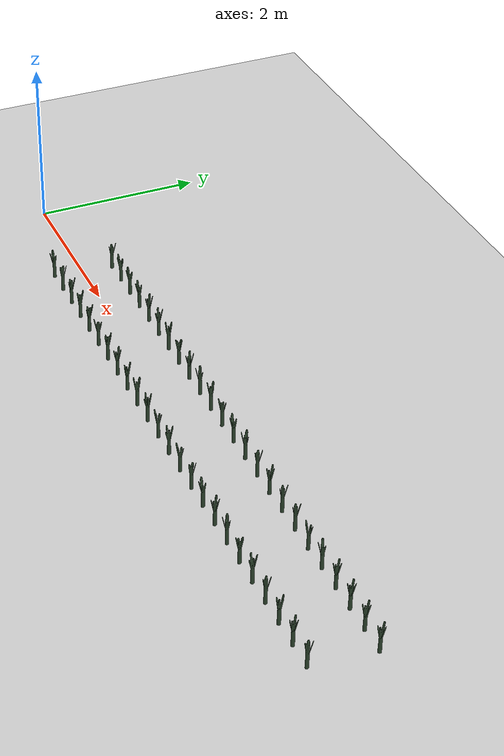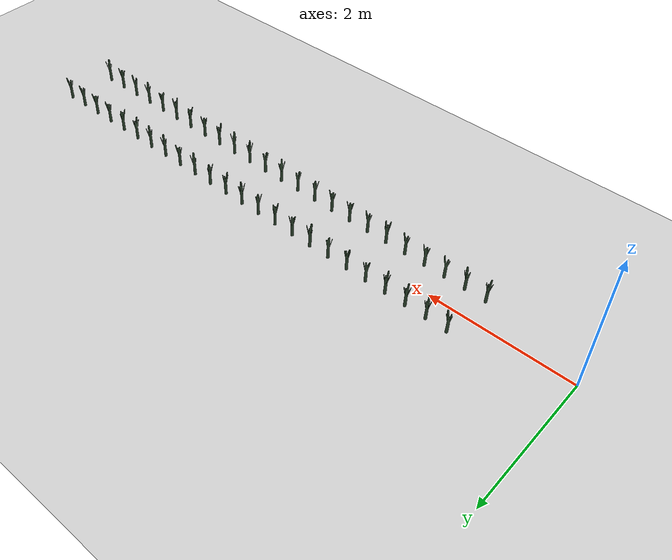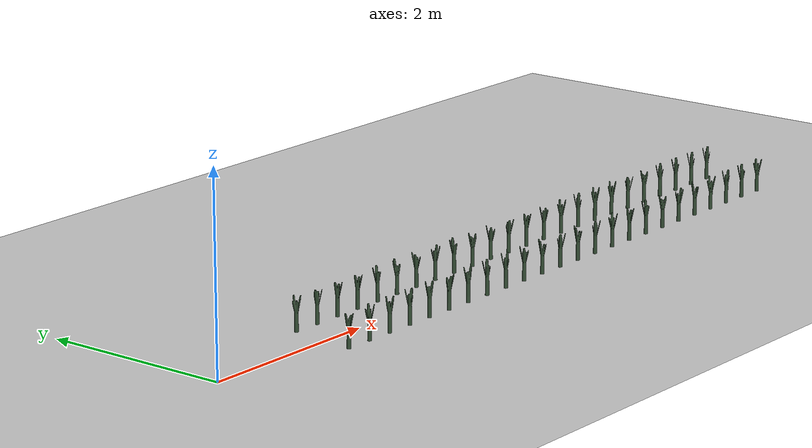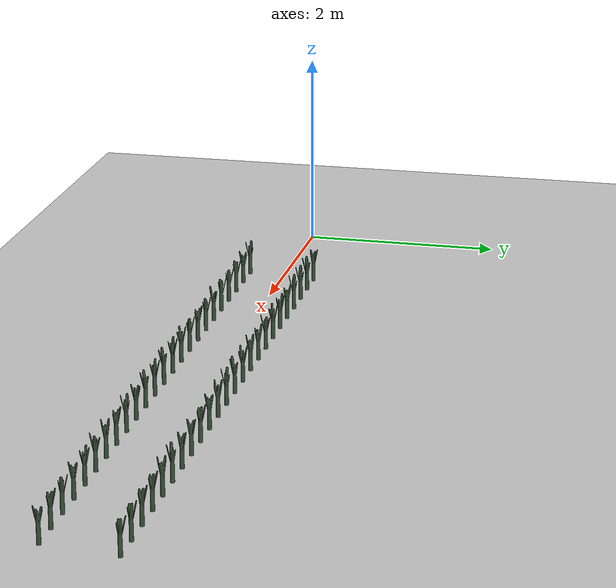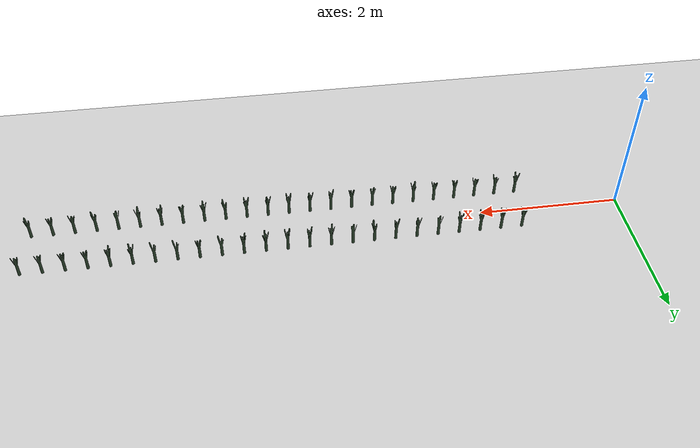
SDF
<sdf version="1.6">
 <world name="default">
  <light name="sun" type="directional">
   <pose>0 0 10 0 -0 0</pose>
   <diffuse>0.5 0.5 0.5 1</diffuse>
   <specular>0.1 0.1 0.1 1</specular>
   <attenuation>
    <range>1000</range>
    <constant>0.9</constant>
    <linear>0.01</linear>
    <quadratic>0.001</quadratic>
   </attenuation>
   <direction>0.9 0.5 -1</direction>
  </light>
  <scene><background>130 200 255 1</background><ambient>130 140 140 1</ambient></scene>
  <include><uri>model://dirt_plane</uri></include>
  <include><uri>model://Leek</uri><pose>1.500000 0.350000 0.15 0 0 -63.247247</pose><static>0</static></include>
  <include><uri>model://Leek</uri><pose>1.800000 0.350000 0.15 0 0 53.749290</pose><static>0</static></include>
  <include><uri>model://Leek</uri><pose>2.100000 0.350000 0.15 0 0 85.017931</pose><static>0</static></include>
  <include><uri>model://Leek</uri><pose>2.400000 0.350000 0.15 0 0 -97.253122</pose><static>0</static></include>
  <include><uri>model://Leek</uri><pose>2.700000 0.350000 0.15 0 0 139.160851</pose><static>0</static></include>
  <include>
   <uri>model://Leek</uri>
   <pose>3.000000 0.350000 0.15 0 0 -143.191316</pose>
   <static>0</static>
  </include>
  <include><uri>model://Leek</uri><pose>3.300000 0.350000 0.15 0 0 20.776110</pose><static>0</static></include>
  <include><uri>model://Leek</uri><pose>3.600000 0.350000 0.15 0 0 -20.081531</pose><static>0</static></include>
  <include><uri>model://Leek</uri><pose>3.900000 0.350000 0.15 0 0 176.967659</pose><static>0</static></include>
  <include><uri>model://Leek</uri><pose>4.200000 0.350000 0.15 0 0 2.768026</pose><static>0</static></include>
  <include>
   <uri>model://Leek</uri>
   <pose>4.500000 0.350000 0.15 0 0 -148.600184</pose>
   <static>0</static>
  </include>
  <include><uri>model://Leek</uri><pose>4.800000 0.350000 0.15 0 0 -71.477841</pose><static>0</static></include>
  <include><uri>model://Leek</uri><pose>5.100000 0.350000 0.15 0 0 40.906088</pose><static>0</static></include>
  <include><uri>model://Leek</uri><pose>5.400000 0.350000 0.15 0 0 -16.394466</pose><static>0</static></include>
  <include><uri>model://Leek</uri><pose>5.700000 0.350000 0.15 0 0 112.449656</pose><static>0</static></include>
  <include><uri>model://Leek</uri><pose>6.000000 0.350000 0.15 0 0 13.091888</pose><static>0</static></include>
  <include><uri>model://Leek</uri><pose>6.300000 0.350000 0.15 0 0 131.440233</pose><static>0</static></include>
  <include>
   <uri>model://Leek</uri>
   <pose>6.600000 0.350000 0.15 0 0 -170.136950</pose>
   <static>0</static>
  </include>
  <include><uri>model://Leek</uri><pose>6.900000 0.350000 0.15 0 0 91.543799</pose><static>0</static></include>
  <include><uri>model://Leek</uri><pose>7.200000 0.350000 0.15 0 0 122.158765</pose><static>0</static></include>
  <include><uri>model://Leek</uri><pose>7.500000 0.350000 0.15 0 0 113.697679</pose><static>0</static></include>
  <include>
   <uri>model://Leek</uri>
   <pose>7.800000 0.350000 0.15 0 0 -106.187764</pose>
   <static>0</static>
  </include>
  <include><uri>model://Leek</uri><pose>8.100000 0.350000 0.15 0 0 -12.070023</pose><static>0</static></include>
  <include><uri>model://Leek</uri><pose>8.400000 0.350000 0.15 0 0 119.840113</pose><static>0</static></include>
  <include><uri>model://Leek</uri><pose>1.418978 -0.350000 0.15 0 0 72.241499</pose><static>0</static></include>
  <include>
   <uri>model://Leek</uri>
   <pose>1.718978 -0.350000 0.15 0 0 -51.010191</pose>
   <static>0</static>
  </include>
  <include>
   <uri>model://Leek</uri>
   <pose>2.018978 -0.350000 0.15 0 0 150.642836</pose>
   <static>0</static>
  </include>
  <include>
   <uri>model://Leek</uri>
   <pose>2.318978 -0.350000 0.15 0 0 -131.663376</pose>
   <static>0</static>
  </include>
  <include>
   <uri>model://Leek</uri>
   <pose>2.618978 -0.350000 0.15 0 0 -100.516533</pose>
   <static>0</static>
  </include>
  <include>
   <uri>model://Leek</uri>
   <pose>2.918978 -0.350000 0.15 0 0 -71.170206</pose>
   <static>0</static>
  </include>
  <include>
   <uri>model://Leek</uri>
   <pose>3.218978 -0.350000 0.15 0 0 -12.440338</pose>
   <static>0</static>
  </include>
  <include>
   <uri>model://Leek</uri>
   <pose>3.518978 -0.350000 0.15 0 0 176.674090</pose>
   <static>0</static>
  </include>
  <include>
   <uri>model://Leek</uri>
   <pose>3.818978 -0.350000 0.15 0 0 100.845259</pose>
   <static>0</static>
  </include>
  <include><uri>model://Leek</uri><pose>4.118978 -0.350000 0.15 0 0 27.219689</pose><static>0</static></include>
  <include>
   <uri>model://Leek</uri>
   <pose>4.418978 -0.350000 0.15 0 0 -73.786594</pose>
   <static>0</static>
  </include>
  <include>
   <uri>model://Leek</uri>
   <pose>4.718978 -0.350000 0.15 0 0 -165.874533</pose>
   <static>0</static>
  </include>
  <include>
   <uri>model://Leek</uri>
   <pose>5.018978 -0.350000 0.15 0 0 177.572739</pose>
   <static>0</static>
  </include>
  <include><uri>model://Leek</uri><pose>5.318978 -0.350000 0.15 0 0 16.303619</pose><static>0</static></include>
  <include><uri>model://Leek</uri><pose>5.618978 -0.350000 0.15 0 0 93.370491</pose><static>0</static></include>
  <include>
   <uri>model://Leek</uri>
   <pose>5.918978 -0.350000 0.15 0 0 -28.234948</pose>
   <static>0</static>
  </include>
  <include>
   <uri>model://Leek</uri>
   <pose>6.218978 -0.350000 0.15 0 0 -87.141476</pose>
   <static>0</static>
  </include>
  <include><uri>model://Leek</uri><pose>6.518978 -0.350000 0.15 0 0 40.461571</pose><static>0</static></include>
  <include><uri>model://Leek</uri><pose>6.818978 -0.350000 0.15 0 0 -7.720552</pose><static>0</static></include>
  <include><uri>model://Leek</uri><pose>7.118978 -0.350000 0.15 0 0 45.456612</pose><static>0</static></include>
  <include>
   <uri>model://Leek</uri>
   <pose>7.418978 -0.350000 0.15 0 0 -138.845344</pose>
   <static>0</static>
  </include>
  <include>
   <uri>model://Leek</uri>
   <pose>7.718978 -0.350000 0.15 0 0 -56.312778</pose>
   <static>0</static>
  </include>
  <include>
   <uri>model://Leek</uri>
   <pose>8.018978 -0.350000 0.15 0 0 120.072271</pose>
   <static>0</static>
  </include>
  <include>
   <uri>model://Leek</uri>
   <pose>8.318978 -0.350000 0.15 0 0 -120.102534</pose>
   <static>0</static>
  </include>
 </world>
</sdf>

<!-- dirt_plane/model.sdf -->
<sdf version="1.4">
<model name="dirt_plane">
  <static>true</static>
    <link name="link">
      <collision name="collision">
        <geometry>
          <plane>
            <normal>0 0 1</normal>
            <size>100 100</size>
          </plane>
        </geometry>
        <surface>
          <friction>
            <ode>
              <mu>100</mu>
              <mu2>50</mu2>
            </ode>
          </friction>
        </surface>
      </collision>
      <visual name="visual">
        <cast_shadows>false</cast_shadows>
        <geometry>
          <plane>
            <normal>0 0 1</normal>
            <size>100 100</size>
          </plane>
        </geometry>
        <material>
          <script>
            <uri>model://ground_plane/materials/scripts/my_ground_plane.material</uri>
            <uri>model://ground_plane/materials/textures</uri>
            <name>my_ground_plane/Dirt</name>
          </script>
        </material>
      </visual>
    </link>
  </model>
</sdf>

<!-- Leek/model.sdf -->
<sdf version='1.6'>
  <model name='Leek'>
    <link name='link'>
      <pose frame=''>0 0 0 0 -0 0</pose>
      <inertial>
        <mass>1</mass>
        <inertia>
          <ixx>0.145833</ixx>
          <ixy>0</ixy>
          <ixz>0</ixz>
          <iyy>0.145833</iyy>
          <iyz>0</iyz>
          <izz>0.125</izz>
        </inertia>
        <pose frame=''>0 0 0 0 -0 0</pose>
      </inertial>
      <self_collide>0</self_collide>
      <kinematic>0</kinematic>
      <gravity>1</gravity>
      <visual name='visual'>
        <geometry>
          <mesh>
            <uri>model://Leek/Poireau.dae</uri>
            <scale>1 1 1</scale>
          </mesh>
        </geometry>
        <material>
          <script>
            <name>Gazebo/Grey</name>
            <uri>file://media/materials/scripts/gazebo.material</uri>
          </script>
          <ambient>0.3 0.7 0.4 0</ambient>
          <diffuse>0.2 0.3 0.2 0</diffuse>
          <specular>0 0 0 1</specular>
          <emissive>0 0 0 1</emissive>
          <shader type='vertex'>
            <normal_map>__default__</normal_map>
          </shader>
        </material>
        <pose frame=''>0 0 -0.08 0 -0 0</pose>
        <cast_shadows>1</cast_shadows>
        <transparency>0</transparency>
      </visual>
      <collision name='collision'>
        <laser_retro>0</laser_retro>
        <max_contacts>10</max_contacts>
        <pose frame=''>0 0 0 0 -0 0</pose>
        <geometry>
          <cylinder>
            <radius>0.02</radius>
            <length>0.25</length>
          </cylinder>
        </geometry>
        <surface>
          <friction>
            <ode>
              <mu>1</mu>
              <mu2>1</mu2>
              <fdir1>0 0 0</fdir1>
              <slip1>0</slip1>
              <slip2>0</slip2>
            </ode>
            <torsional>
              <coefficient>1</coefficient>
              <patch_radius>0</patch_radius>
              <surface_radius>0</surface_radius>
              <use_patch_radius>1</use_patch_radius>
              <ode>
                <slip>0</slip>
              </ode>
            </torsional>
          </friction>
          <bounce>
            <restitution_coefficient>0</restitution_coefficient>
            <threshold>1e+06</threshold>
          </bounce>
          <contact>
            <collide_without_contact>0</collide_without_contact>
            <collide_without_contact_bitmask>1</collide_without_contact_bitmask>
            <collide_bitmask>1</collide_bitmask>
            <ode>
              <soft_cfm>0</soft_cfm>
              <soft_erp>0.2</soft_erp>
              <kp>1e+13</kp>
              <kd>1</kd>
              <max_vel>0.01</max_vel>
              <min_depth>0</min_depth>
            </ode>
            <bullet>
              <split_impulse>1</split_impulse>
              <split_impulse_penetration_threshold>-0.01</split_impulse_penetration_threshold>
              <soft_cfm>0</soft_cfm>
              <soft_erp>0.2</soft_erp>
              <kp>1e+13</kp>
              <kd>1</kd>
            </bullet>
          </contact>
        </surface>
      </collision>
    </link>
    <static>0</static>
    <allow_auto_disable>1</allow_auto_disable>
  </model>
</sdf>
